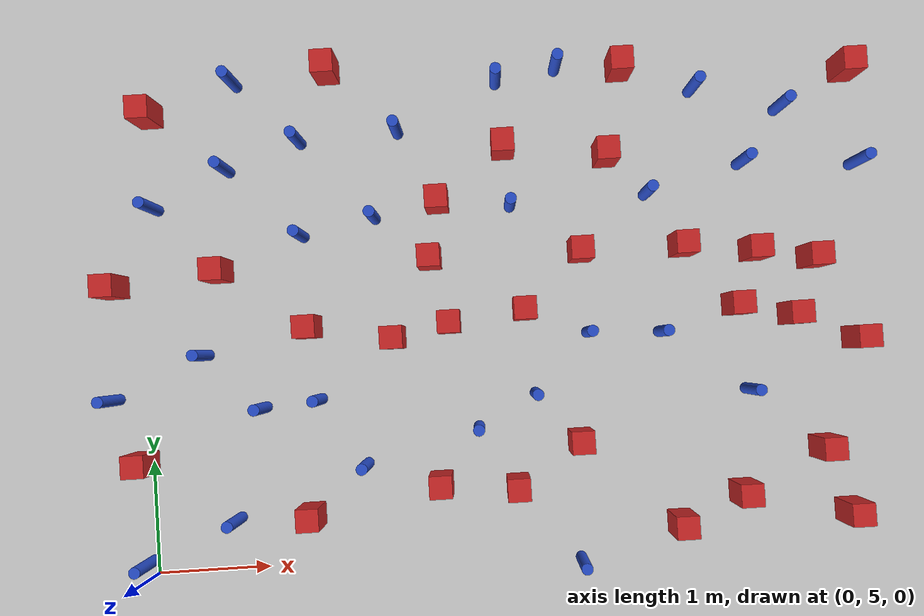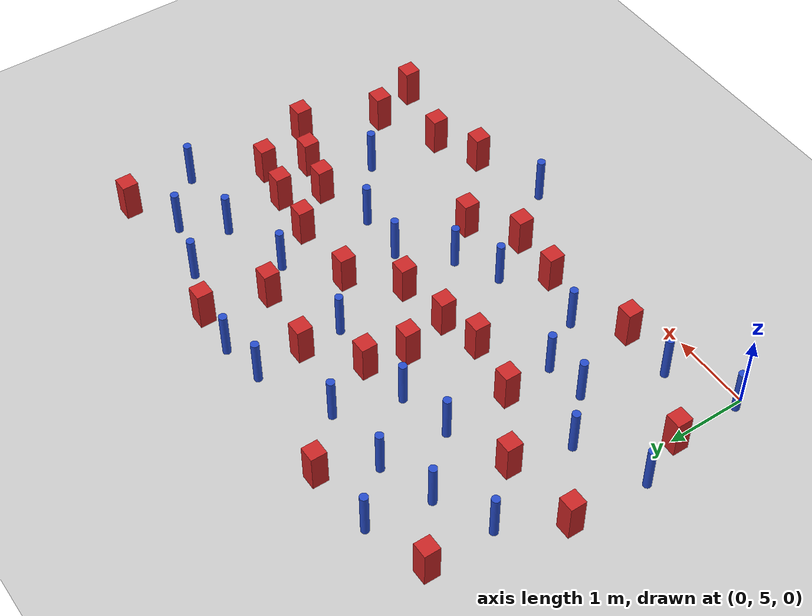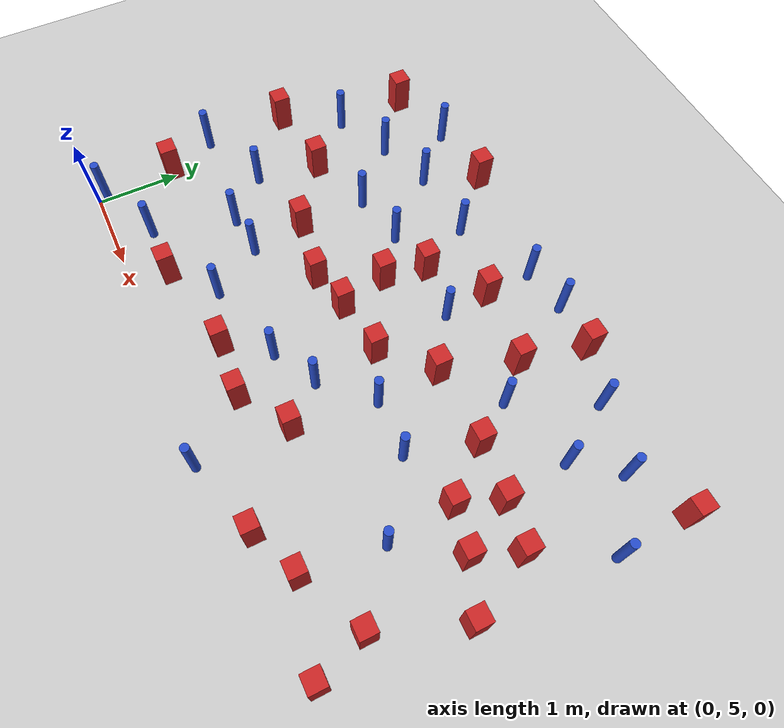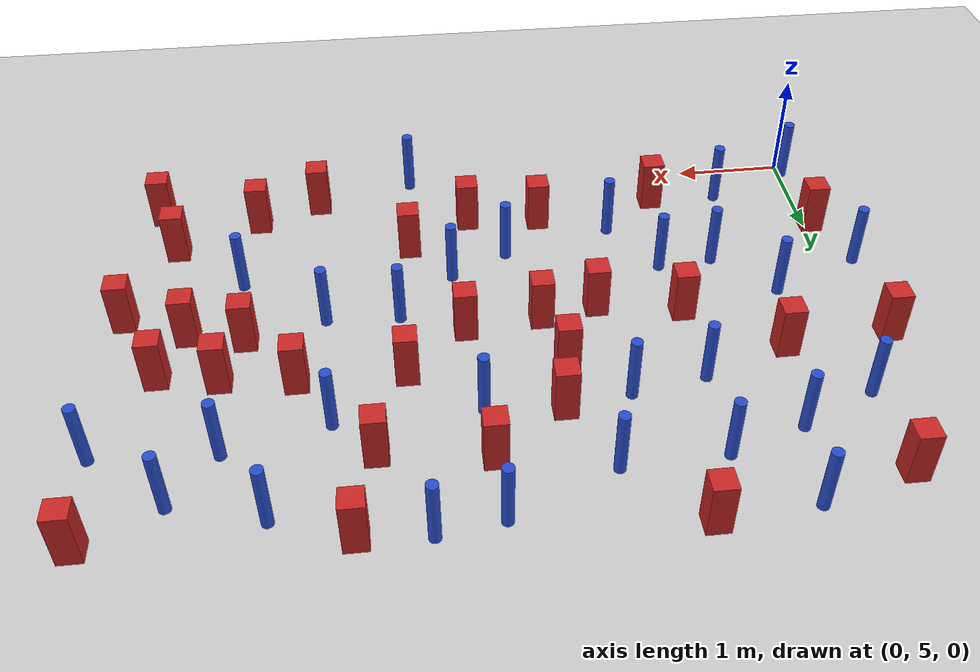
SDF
<sdf version="1.6">
 <world name="default">
  <model name="ground_plane">
   <static>1</static>
   <link name="link">
    <collision name="collision">
     <geometry><plane><normal>0 0 1</normal><size>100 100</size></plane></geometry>
     <surface><friction><ode><mu>100</mu><mu2>50</mu2></ode></friction></surface>
    </collision>
    <visual name="visual">
     <cast_shadows>0</cast_shadows>
     <geometry><plane><normal>0 0 1</normal><size>100 100</size></plane></geometry>
     <material>
      <ambient>1.0 1.0 1.0 1.0</ambient>
      <diffuse>0.8 0.8 0.8 1.0</diffuse>
      <specular>0.01 0.01 0.01 1.000000</specular>
     </material>
    </visual>
   </link>
  </model>
  <model name="square_post_obstacle3">
   <static>true</static>
   <pose>-0.052275715814 5.99567114476 -7.80171244635e-07 7.17449752808e-06 -5.6639232126e-07 2.2715510512e-05</pose>
   <link name="link">
    <pose>0 0 0.25 0 -0 0</pose>
    <inertial>
     <mass>100</mass>
     <inertia>
      <ixx>0.166667</ixx>
      <ixy>0</ixy>
      <ixz>0</ixz>
      <iyy>0.166667</iyy>
      <iyz>0</iyz>
      <izz>0.166667</izz>
     </inertia>
    </inertial>
    <collision name="collision"><geometry><box><size>.2 .2 .5</size></box></geometry></collision>
    <visual name="visual">
     <geometry><box><size>.2 .2 .5</size></box></geometry>
     <material>
      <script><name>Gazebo/Red</name><uri>file://media/materials/scripts/gazebo.material</uri></script>
     </material>
    </visual>
   </link>
  </model>
  <model name="pole_obstacle10">
   <static>true</static>
   <pose>2.35610760975 8.82782065724 -2.66029137497e-07 -5.69430205676e-07 6.84129966501e-07 -8.6834937112e-08</pose>
   <link name="link">
    <pose>0 0 0.3 0 -0 0</pose>
    <inertial>
     <mass>1</mass>
     <inertia><ixx>0.145833</ixx><ixy>0</ixy><ixz>0</ixz><iyy>0.145833</iyy><iyz>0</iyz><izz>0.125</izz></inertia>
    </inertial>
    <collision name="collision">
     <geometry><cylinder><radius>0.05</radius><length>.6</length></cylinder></geometry>
    </collision>
    <visual name="visual">
     <geometry><cylinder><radius>0.05</radius><length>.6</length></cylinder></geometry>
     <material>
      <script><name>Gazebo/Blue</name><uri>file://media/materials/scripts/gazebo.material</uri></script>
     </material>
    </visual>
   </link>
  </model>
  <model name="square_post_obstacle14">
   <static>true</static>
   <pose>6.35585183416 6.74321100614 -7.80171244635e-07 7.17449752808e-06 -5.6639232126e-07 2.2715510512e-05</pose>
   <link name="link">
    <pose>0 0 0.25 0 -0 0</pose>
    <inertial>
     <mass>100</mass>
     <inertia>
      <ixx>0.166667</ixx>
      <ixy>0</ixy>
      <ixz>0</ixz>
      <iyy>0.166667</iyy>
      <iyz>0</iyz>
      <izz>0.166667</izz>
     </inertia>
    </inertial>
    <collision name="collision"><geometry><box><size>.2 .2 .5</size></box></geometry></collision>
    <visual name="visual">
     <geometry><box><size>.2 .2 .5</size></box></geometry>
     <material>
      <script><name>Gazebo/Red</name><uri>file://media/materials/scripts/gazebo.material</uri></script>
     </material>
    </visual>
   </link>
  </model>
  <model name="pole_obstacle19">
   <static>true</static>
   <pose>5.78085711866 8.83822243852 -2.66029137441e-07 -5.69430205631e-07 6.84129966561e-07 -8.68349370782e-08</pose>
   <link name="link">
    <pose>0 0 0.3 0 -0 0</pose>
    <inertial>
     <mass>1</mass>
     <inertia><ixx>0.145833</ixx><ixy>0</ixy><ixz>0</ixz><iyy>0.145833</iyy><iyz>0</iyz><izz>0.125</izz></inertia>
    </inertial>
    <collision name="collision">
     <geometry><cylinder><radius>0.05</radius><length>.6</length></cylinder></geometry>
    </collision>
    <visual name="visual">
     <geometry><cylinder><radius>0.05</radius><length>.6</length></cylinder></geometry>
     <material>
      <script><name>Gazebo/Blue</name><uri>file://media/materials/scripts/gazebo.material</uri></script>
     </material>
    </visual>
   </link>
  </model>
  <model name="pole_obstacle22">
   <static>true</static>
   <pose>1.54089773245 6.47001497379 -2.66029137441e-07 -5.69430205635e-07 6.84129966557e-07 -8.68349370822e-08</pose>
   <link name="link">
    <pose>0 0 0.3 0 -0 0</pose>
    <inertial>
     <mass>1</mass>
     <inertia><ixx>0.145833</ixx><ixy>0</ixy><ixz>0</ixz><iyy>0.145833</iyy><iyz>0</iyz><izz>0.125</izz></inertia>
    </inertial>
    <collision name="collision">
     <geometry><cylinder><radius>0.05</radius><length>.6</length></cylinder></geometry>
    </collision>
    <visual name="visual">
     <geometry><cylinder><radius>0.05</radius><length>.6</length></cylinder></geometry>
     <material>
      <script><name>Gazebo/Blue</name><uri>file://media/materials/scripts/gazebo.material</uri></script>
     </material>
    </visual>
   </link>
  </model>
  <model name="pole_obstacle26">
   <static>true</static>
   <pose>2.94157111526 6.14067934251 -2.66029137441e-07 -5.69430205635e-07 6.84129966557e-07 -8.68349370832e-08</pose>
   <link name="link">
    <pose>0 0 0.3 0 -0 0</pose>
    <inertial>
     <mass>1</mass>
     <inertia><ixx>0.145833</ixx><ixy>0</ixy><ixz>0</ixz><iyy>0.145833</iyy><iyz>0</iyz><izz>0.125</izz></inertia>
    </inertial>
    <collision name="collision">
     <geometry><cylinder><radius>0.05</radius><length>.6</length></cylinder></geometry>
    </collision>
    <visual name="visual">
     <geometry><cylinder><radius>0.05</radius><length>.6</length></cylinder></geometry>
     <material>
      <script><name>Gazebo/Blue</name><uri>file://media/materials/scripts/gazebo.material</uri></script>
     </material>
    </visual>
   </link>
  </model>
  <model name="square_post_obstacle20">
   <static>true</static>
   <pose>2.22620706978 6.97850920436 -7.80171244635e-07 7.17449752808e-06 -5.6639232126e-07 2.2715510512e-05</pose>
   <link name="link">
    <pose>0 0 0.25 0 -0 0</pose>
    <inertial>
     <mass>100</mass>
     <inertia>
      <ixx>0.166667</ixx>
      <ixy>0</ixy>
      <ixz>0</ixz>
      <iyy>0.166667</iyy>
      <iyz>0</iyz>
      <izz>0.166667</izz>
     </inertia>
    </inertial>
    <collision name="collision"><geometry><box><size>.2 .2 .5</size></box></geometry></collision>
    <visual name="visual">
     <geometry><box><size>.2 .2 .5</size></box></geometry>
     <material>
      <script><name>Gazebo/Red</name><uri>file://media/materials/scripts/gazebo.material</uri></script>
     </material>
    </visual>
   </link>
  </model>
  <model name="square_post_obstacle30">
   <static>true</static>
   <pose>3.9288812483 7.65785033629 -7.80171244635e-07 7.17449752808e-06 -5.6639232126e-07 2.2715510512e-05</pose>
   <link name="link">
    <pose>0 0 0.25 0 -0 0</pose>
    <inertial>
     <mass>100</mass>
     <inertia>
      <ixx>0.166667</ixx>
      <ixy>0</ixy>
      <ixz>0</ixz>
      <iyy>0.166667</iyy>
      <iyz>0</iyz>
      <izz>0.166667</izz>
     </inertia>
    </inertial>
    <collision name="collision"><geometry><box><size>.2 .2 .5</size></box></geometry></collision>
    <visual name="visual">
     <geometry><box><size>.2 .2 .5</size></box></geometry>
     <material>
      <script><name>Gazebo/Red</name><uri>file://media/materials/scripts/gazebo.material</uri></script>
     </material>
    </visual>
   </link>
  </model>
  <model name="square_post_obstacle41">
   <static>true</static>
   <pose>3.83089418273 5.97310465124 -7.80171244635e-07 7.17449752808e-06 -5.6639232126e-07 2.2715510512e-05</pose>
   <link name="link">
    <pose>0 0 0.25 0 -0 0</pose>
    <inertial>
     <mass>100</mass>
     <inertia>
      <ixx>0.166667</ixx>
      <ixy>0</ixy>
      <ixz>0</ixz>
      <iyy>0.166667</iyy>
      <iyz>0</iyz>
      <izz>0.166667</izz>
     </inertia>
    </inertial>
    <collision name="collision"><geometry><box><size>.2 .2 .5</size></box></geometry></collision>
    <visual name="visual">
     <geometry><box><size>.2 .2 .5</size></box></geometry>
     <material>
      <script><name>Gazebo/Red</name><uri>file://media/materials/scripts/gazebo.material</uri></script>
     </material>
    </visual>
   </link>
  </model>
  <model name="pole_obstacle62">
   <static>true</static>
   <pose>0.540616014914 6.92256823517 -2.66029137441e-07 -5.69430205632e-07 6.8412996656e-07 -8.68349370785e-08</pose>
   <link name="link">
    <pose>0 0 0.3 0 -0 0</pose>
    <inertial>
     <mass>1</mass>
     <inertia><ixx>0.145833</ixx><ixy>0</ixy><ixz>0</ixz><iyy>0.145833</iyy><iyz>0</iyz><izz>0.125</izz></inertia>
    </inertial>
    <collision name="collision">
     <geometry><cylinder><radius>0.05</radius><length>.6</length></cylinder></geometry>
    </collision>
    <visual name="visual">
     <geometry><cylinder><radius>0.05</radius><length>.6</length></cylinder></geometry>
     <material>
      <script><name>Gazebo/Blue</name><uri>file://media/materials/scripts/gazebo.material</uri></script>
     </material>
    </visual>
   </link>
  </model>
  <model name="pole_obstacle66">
   <static>true</static>
   <pose>5.41354368745 8.36356187564 -2.66029137441e-07 -5.69430205631e-07 6.84129966561e-07 -8.68349370782e-08</pose>
   <link name="link">
    <pose>0 0 0.3 0 -0 0</pose>
    <inertial>
     <mass>1</mass>
     <inertia><ixx>0.145833</ixx><ixy>0</ixy><ixz>0</ixz><iyy>0.145833</iyy><iyz>0</iyz><izz>0.125</izz></inertia>
    </inertial>
    <collision name="collision">
     <geometry><cylinder><radius>0.05</radius><length>.6</length></cylinder></geometry>
    </collision>
    <visual name="visual">
     <geometry><cylinder><radius>0.05</radius><length>.6</length></cylinder></geometry>
     <material>
      <script><name>Gazebo/Blue</name><uri>file://media/materials/scripts/gazebo.material</uri></script>
     </material>
    </visual>
   </link>
  </model>
  <model name="square_post_obstacle56">
   <static>true</static>
   <pose>3.40209601687 7.16593154518 -7.80171244635e-07 7.17449752808e-06 -5.6639232126e-07 2.2715510512e-05</pose>
   <link name="link">
    <pose>0 0 0.25 0 -0 0</pose>
    <inertial>
     <mass>100</mass>
     <inertia>
      <ixx>0.166667</ixx>
      <ixy>0</ixy>
      <ixz>0</ixz>
      <iyy>0.166667</iyy>
      <iyz>0</iyz>
      <izz>0.166667</izz>
     </inertia>
    </inertial>
    <collision name="collision"><geometry><box><size>.2 .2 .5</size></box></geometry></collision>
    <visual name="visual">
     <geometry><box><size>.2 .2 .5</size></box></geometry>
     <material>
      <script><name>Gazebo/Red</name><uri>file://media/materials/scripts/gazebo.material</uri></script>
     </material>
    </visual>
   </link>
  </model>
  <model name="pole_obstacle70">
   <static>true</static>
   <pose>-0.0394150920426 5.11509603795 -2.66029137441e-07 -5.69430205631e-07 6.84129966562e-07 -8.68349370804e-08</pose>
   <link name="link">
    <pose>0 0 0.3 0 -0 0</pose>
    <inertial>
     <mass>1</mass>
     <inertia><ixx>0.145833</ixx><ixy>0</ixy><ixz>0</ixz><iyy>0.145833</iyy><iyz>0</iyz><izz>0.125</izz></inertia>
    </inertial>
    <collision name="collision">
     <geometry><cylinder><radius>0.05</radius><length>.6</length></cylinder></geometry>
    </collision>
    <visual name="visual">
     <geometry><cylinder><radius>0.05</radius><length>.6</length></cylinder></geometry>
     <material>
      <script><name>Gazebo/Blue</name><uri>file://media/materials/scripts/gazebo.material</uri></script>
     </material>
    </visual>
   </link>
  </model>
  <model name="pole_obstacle71">
   <static>true</static>
   <pose>2.10954711414 8.06397014819 -2.66029137497e-07 -5.69430205676e-07 6.84129966501e-07 -8.6834937112e-08</pose>
   <link name="link">
    <pose>0 0 0.3 0 -0 0</pose>
    <inertial>
     <mass>1</mass>
     <inertia><ixx>0.145833</ixx><ixy>0</ixy><ixz>0</ixz><iyy>0.145833</iyy><iyz>0</iyz><izz>0.125</izz></inertia>
    </inertial>
    <collision name="collision">
     <geometry><cylinder><radius>0.05</radius><length>.6</length></cylinder></geometry>
    </collision>
    <visual name="visual">
     <geometry><cylinder><radius>0.05</radius><length>.6</length></cylinder></geometry>
     <material>
      <script><name>Gazebo/Blue</name><uri>file://media/materials/scripts/gazebo.material</uri></script>
     </material>
    </visual>
   </link>
  </model>
  <model name="square_post_obstacle64">
   <static>true</static>
   <pose>5.29170259975 7.1006278311 -7.80171244635e-07 7.17449752808e-06 -5.6639232126e-07 2.2715510512e-05</pose>
   <link name="link">
    <pose>0 0 0.25 0 -0 0</pose>
    <inertial>
     <mass>100</mass>
     <inertia>
      <ixx>0.166667</ixx>
      <ixy>0</ixy>
      <ixz>0</ixz>
      <iyy>0.166667</iyy>
      <iyz>0</iyz>
      <izz>0.166667</izz>
     </inertia>
    </inertial>
    <collision name="collision"><geometry><box><size>.2 .2 .5</size></box></geometry></collision>
    <visual name="visual">
     <geometry><box><size>.2 .2 .5</size></box></geometry>
     <material>
      <script><name>Gazebo/Red</name><uri>file://media/materials/scripts/gazebo.material</uri></script>
     </material>
    </visual>
   </link>
  </model>
  <model name="pole_obstacle78">
   <static>true</static>
   <pose>0.812121043673 8.56617984951 -2.66029137441e-07 -5.69430205653e-07 6.84129966536e-07 -8.6834937098e-08</pose>
   <link name="link">
    <pose>0 0 0.3 0 -0 0</pose>
    <inertial>
     <mass>1</mass>
     <inertia><ixx>0.145833</ixx><ixy>0</ixy><ixz>0</ixz><iyy>0.145833</iyy><iyz>0</iyz><izz>0.125</izz></inertia>
    </inertial>
    <collision name="collision">
     <geometry><cylinder><radius>0.05</radius><length>.6</length></cylinder></geometry>
    </collision>
    <visual name="visual">
     <geometry><cylinder><radius>0.05</radius><length>.6</length></cylinder></geometry>
     <material>
      <script><name>Gazebo/Blue</name><uri>file://media/materials/scripts/gazebo.material</uri></script>
     </material>
    </visual>
   </link>
  </model>
  <model name="pole_obstacle80">
   <static>true</static>
   <pose>1.47290143079 8.78660141103 -2.66029137441e-07 -5.69430205648e-07 6.84129966543e-07 -8.68349370925e-08</pose>
   <link name="link">
    <pose>0 0 0.3 0 -0 0</pose>
    <inertial>
     <mass>1</mass>
     <inertia><ixx>0.145833</ixx><ixy>0</ixy><ixz>0</ixz><iyy>0.145833</iyy><iyz>0</iyz><izz>0.125</izz></inertia>
    </inertial>
    <collision name="collision">
     <geometry><cylinder><radius>0.05</radius><length>.6</length></cylinder></geometry>
    </collision>
    <visual name="visual">
     <geometry><cylinder><radius>0.05</radius><length>.6</length></cylinder></geometry>
     <material>
      <script><name>Gazebo/Blue</name><uri>file://media/materials/scripts/gazebo.material</uri></script>
     </material>
    </visual>
   </link>
  </model>
  <model name="square_post_obstacle71">
   <static>true</static>
   <pose>4.37285888145 9.28550929381 -7.80171244635e-07 7.17449752808e-06 -5.6639232126e-07 2.2715510512e-05</pose>
   <link name="link">
    <pose>0 0 0.25 0 -0 0</pose>
    <inertial>
     <mass>100</mass>
     <inertia>
      <ixx>0.166667</ixx>
      <ixy>0</ixy>
      <ixz>0</ixz>
      <iyy>0.166667</iyy>
      <iyz>0</iyz>
      <izz>0.166667</izz>
     </inertia>
    </inertial>
    <collision name="collision"><geometry><box><size>.2 .2 .5</size></box></geometry></collision>
    <visual name="visual">
     <geometry><box><size>.2 .2 .5</size></box></geometry>
     <material>
      <script><name>Gazebo/Red</name><uri>file://media/materials/scripts/gazebo.material</uri></script>
     </material>
    </visual>
   </link>
  </model>
  <model name="pole_obstacle85">
   <static>true</static>
   <pose>3.26496765232 9.22802641486 -2.66029137497e-07 -5.69430205676e-07 6.84129966501e-07 -8.6834937112e-08</pose>
   <link name="link">
    <pose>0 0 0.3 0 -0 0</pose>
    <inertial>
     <mass>1</mass>
     <inertia><ixx>0.145833</ixx><ixy>0</ixy><ixz>0</ixz><iyy>0.145833</iyy><iyz>0</iyz><izz>0.125</izz></inertia>
    </inertial>
    <collision name="collision">
     <geometry><cylinder><radius>0.05</radius><length>.6</length></cylinder></geometry>
    </collision>
    <visual name="visual">
     <geometry><cylinder><radius>0.05</radius><length>.6</length></cylinder></geometry>
     <material>
      <script><name>Gazebo/Blue</name><uri>file://media/materials/scripts/gazebo.material</uri></script>
     </material>
    </visual>
   </link>
  </model>
  <model name="square_post_obstacle73">
   <static>true</static>
   <pose>1.42253095902 5.45103225307 -7.80171244635e-07 7.17449752808e-06 -5.6639232126e-07 2.2715510512e-05</pose>
   <link name="link">
    <pose>0 0 0.25 0 -0 0</pose>
    <inertial>
     <mass>100</mass>
     <inertia>
      <ixx>0.166667</ixx>
      <ixy>0</ixy>
      <ixz>0</ixz>
      <iyy>0.166667</iyy>
      <iyz>0</iyz>
      <izz>0.166667</izz>
     </inertia>
    </inertial>
    <collision name="collision"><geometry><box><size>.2 .2 .5</size></box></geometry></collision>
    <visual name="visual">
     <geometry><box><size>.2 .2 .5</size></box></geometry>
     <material>
      <script><name>Gazebo/Red</name><uri>file://media/materials/scripts/gazebo.material</uri></script>
     </material>
    </visual>
   </link>
  </model>
  <model name="pole_obstacle87">
   <static>true</static>
   <pose>3.95947070285 6.92773630327 -2.66029137441e-07 -5.69430205645e-07 6.84129966546e-07 -8.68349370914e-08</pose>
   <link name="link">
    <pose>0 0 0.3 0 -0 0</pose>
    <inertial>
     <mass>1</mass>
     <inertia><ixx>0.145833</ixx><ixy>0</ixy><ixz>0</ixz><iyy>0.145833</iyy><iyz>0</iyz><izz>0.125</izz></inertia>
    </inertial>
    <collision name="collision">
     <geometry><cylinder><radius>0.05</radius><length>.6</length></cylinder></geometry>
    </collision>
    <visual name="visual">
     <geometry><cylinder><radius>0.05</radius><length>.6</length></cylinder></geometry>
     <material>
      <script><name>Gazebo/Blue</name><uri>file://media/materials/scripts/gazebo.material</uri></script>
     </material>
    </visual>
   </link>
  </model>
  <model name="square_post_obstacle76">
   <static>true</static>
   <pose>0.700652838957 7.66441642468 -7.80171244635e-07 7.17449752808e-06 -5.6639232126e-07 2.2715510512e-05</pose>
   <link name="link">
    <pose>0 0 0.25 0 -0 0</pose>
    <inertial>
     <mass>100</mass>
     <inertia>
      <ixx>0.166667</ixx>
      <ixy>0</ixy>
      <ixz>0</ixz>
      <iyy>0.166667</iyy>
      <iyz>0</iyz>
      <izz>0.166667</izz>
     </inertia>
    </inertial>
    <collision name="collision"><geometry><box><size>.2 .2 .5</size></box></geometry></collision>
    <visual name="visual">
     <geometry><box><size>.2 .2 .5</size></box></geometry>
     <material>
      <script><name>Gazebo/Red</name><uri>file://media/materials/scripts/gazebo.material</uri></script>
     </material>
    </visual>
   </link>
  </model>
  <model name="square_post_obstacle77">
   <static>true</static>
   <pose>6.39340867287 9.16328746419 -7.80171244635e-07 7.17449752808e-06 -5.6639232126e-07 2.2715510512e-05</pose>
   <link name="link">
    <pose>0 0 0.25 0 -0 0</pose>
    <inertial>
     <mass>100</mass>
     <inertia>
      <ixx>0.166667</ixx>
      <ixy>0</ixy>
      <ixz>0</ixz>
      <iyy>0.166667</iyy>
      <iyz>0</iyz>
      <izz>0.166667</izz>
     </inertia>
    </inertial>
    <collision name="collision"><geometry><box><size>.2 .2 .5</size></box></geometry></collision>
    <visual name="visual">
     <geometry><box><size>.2 .2 .5</size></box></geometry>
     <material>
      <script><name>Gazebo/Red</name><uri>file://media/materials/scripts/gazebo.material</uri></script>
     </material>
    </visual>
   </link>
  </model>
  <model name="square_post_obstacle80">
   <static>true</static>
   <pose>4.68021945516 5.19533221352 -7.80171244635e-07 7.17449752808e-06 -5.6639232126e-07 2.2715510512e-05</pose>
   <link name="link">
    <pose>0 0 0.25 0 -0 0</pose>
    <inertial>
     <mass>100</mass>
     <inertia>
      <ixx>0.166667</ixx>
      <ixy>0</ixy>
      <ixz>0</ixz>
      <iyy>0.166667</iyy>
      <iyz>0</iyz>
      <izz>0.166667</izz>
     </inertia>
    </inertial>
    <collision name="collision"><geometry><box><size>.2 .2 .5</size></box></geometry></collision>
    <visual name="visual">
     <geometry><box><size>.2 .2 .5</size></box></geometry>
     <material>
      <script><name>Gazebo/Red</name><uri>file://media/materials/scripts/gazebo.material</uri></script>
     </material>
    </visual>
   </link>
  </model>
  <model name="square_post_obstacle81">
   <static>true</static>
   <pose>-0.249215403862 7.57418927846 -7.80171244635e-07 7.17449752808e-06 -5.6639232126e-07 2.2715510512e-05</pose>
   <link name="link">
    <pose>0 0 0.25 0 -0 0</pose>
    <inertial>
     <mass>100</mass>
     <inertia>
      <ixx>0.166667</ixx>
      <ixy>0</ixy>
      <ixz>0</ixz>
      <iyy>0.166667</iyy>
      <iyz>0</iyz>
      <izz>0.166667</izz>
     </inertia>
    </inertial>
    <collision name="collision"><geometry><box><size>.2 .2 .5</size></box></geometry></collision>
    <visual name="visual">
     <geometry><box><size>.2 .2 .5</size></box></geometry>
     <material>
      <script><name>Gazebo/Red</name><uri>file://media/materials/scripts/gazebo.material</uri></script>
     </material>
    </visual>
   </link>
  </model>
  <model name="pole_obstacle97">
   <static>true</static>
   <pose>3.78564591583 4.91891246787 -2.66029137441e-07 -5.69430205635e-07 6.84129966557e-07 -8.68349370832e-08</pose>
   <link name="link">
    <pose>0 0 0.3 0 -0 0</pose>
    <inertial>
     <mass>1</mass>
     <inertia><ixx>0.145833</ixx><ixy>0</ixy><ixz>0</ixz><iyy>0.145833</iyy><iyz>0</iyz><izz>0.125</izz></inertia>
    </inertial>
    <collision name="collision">
     <geometry><cylinder><radius>0.05</radius><length>.6</length></cylinder></geometry>
    </collision>
    <visual name="visual">
     <geometry><cylinder><radius>0.05</radius><length>.6</length></cylinder></geometry>
     <material>
      <script><name>Gazebo/Blue</name><uri>file://media/materials/scripts/gazebo.material</uri></script>
     </material>
    </visual>
   </link>
  </model>
  <model name="pole_obstacle100">
   <static>true</static>
   <pose>0.917465412498 9.34221974622 -2.66029137441e-07 -5.69430205653e-07 6.84129966536e-07 -8.6834937098e-08</pose>
   <link name="link">
    <pose>0 0 0.3 0 -0 0</pose>
    <inertial>
     <mass>1</mass>
     <inertia><ixx>0.145833</ixx><ixy>0</ixy><ixz>0</ixz><iyy>0.145833</iyy><iyz>0</iyz><izz>0.125</izz></inertia>
    </inertial>
    <collision name="collision">
     <geometry><cylinder><radius>0.05</radius><length>.6</length></cylinder></geometry>
    </collision>
    <visual name="visual">
     <geometry><cylinder><radius>0.05</radius><length>.6</length></cylinder></geometry>
     <material>
      <script><name>Gazebo/Blue</name><uri>file://media/materials/scripts/gazebo.material</uri></script>
     </material>
    </visual>
   </link>
  </model>
  <model name="pole_obstacle101">
   <static>true</static>
   <pose>3.8055453714 9.31790699952 -2.66029137497e-07 -5.69430205676e-07 6.84129966501e-07 -8.6834937112e-08</pose>
   <link name="link">
    <pose>0 0 0.3 0 -0 0</pose>
    <inertial>
     <mass>1</mass>
     <inertia><ixx>0.145833</ixx><ixy>0</ixy><ixz>0</ixz><iyy>0.145833</iyy><iyz>0</iyz><izz>0.125</izz></inertia>
    </inertial>
    <collision name="collision">
     <geometry><cylinder><radius>0.05</radius><length>.6</length></cylinder></geometry>
    </collision>
    <visual name="visual">
     <geometry><cylinder><radius>0.05</radius><length>.6</length></cylinder></geometry>
     <material>
      <script><name>Gazebo/Blue</name><uri>file://media/materials/scripts/gazebo.material</uri></script>
     </material>
    </visual>
   </link>
  </model>
  <model name="square_post_obstacle97">
   <static>true</static>
   <pose>3.29262240636 8.63357182345 -7.80171244635e-07 7.17449752808e-06 -5.6639232126e-07 2.2715510512e-05</pose>
   <link name="link">
    <pose>0 0 0.25 0 -0 0</pose>
    <inertial>
     <mass>100</mass>
     <inertia>
      <ixx>0.166667</ixx>
      <ixy>0</ixy>
      <ixz>0</ixz>
      <iyy>0.166667</iyy>
      <iyz>0</iyz>
      <izz>0.166667</izz>
     </inertia>
    </inertial>
    <collision name="collision"><geometry><box><size>.2 .2 .5</size></box></geometry></collision>
    <visual name="visual">
     <geometry><box><size>.2 .2 .5</size></box></geometry>
     <material>
      <script><name>Gazebo/Red</name><uri>file://media/materials/scripts/gazebo.material</uri></script>
     </material>
    </visual>
   </link>
  </model>
  <model name="square_post_obstacle102">
   <static>true</static>
   <pose>6.19023293732 5.21513610214 -7.80171244635e-07 7.17449752808e-06 -5.6639232126e-07 2.2715510512e-05</pose>
   <link name="link">
    <pose>0 0 0.25 0 -0 0</pose>
    <inertial>
     <mass>100</mass>
     <inertia>
      <ixx>0.166667</ixx>
      <ixy>0</ixy>
      <ixz>0</ixz>
      <iyy>0.166667</iyy>
      <iyz>0</iyz>
      <izz>0.166667</izz>
     </inertia>
    </inertial>
    <collision name="collision"><geometry><box><size>.2 .2 .5</size></box></geometry></collision>
    <visual name="visual">
     <geometry><box><size>.2 .2 .5</size></box></geometry>
     <material>
      <script><name>Gazebo/Red</name><uri>file://media/materials/scripts/gazebo.material</uri></script>
     </material>
    </visual>
   </link>
  </model>
  <model name="pole_obstacle111">
   <static>true</static>
   <pose>1.9273725619 5.87032819442 -2.66029137441e-07 -5.69430205635e-07 6.84129966557e-07 -8.68349370822e-08</pose>
   <link name="link">
    <pose>0 0 0.3 0 -0 0</pose>
    <inertial>
     <mass>1</mass>
     <inertia><ixx>0.145833</ixx><ixy>0</ixy><ixz>0</ixz><iyy>0.145833</iyy><iyz>0</iyz><izz>0.125</izz></inertia>
    </inertial>
    <collision name="collision">
     <geometry><cylinder><radius>0.05</radius><length>.6</length></cylinder></geometry>
    </collision>
    <visual name="visual">
     <geometry><cylinder><radius>0.05</radius><length>.6</length></cylinder></geometry>
     <material>
      <script><name>Gazebo/Blue</name><uri>file://media/materials/scripts/gazebo.material</uri></script>
     </material>
    </visual>
   </link>
  </model>
  <model name="square_post_obstacle106">
   <static>true</static>
   <pose>2.58153584131 5.66519714033 -7.80171244635e-07 7.17449752808e-06 -5.6639232126e-07 2.2715510512e-05</pose>
   <link name="link">
    <pose>0 0 0.25 0 -0 0</pose>
    <inertial>
     <mass>100</mass>
     <inertia>
      <ixx>0.166667</ixx>
      <ixy>0</ixy>
      <ixz>0</ixz>
      <iyy>0.166667</iyy>
      <iyz>0</iyz>
      <izz>0.166667</izz>
     </inertia>
    </inertial>
    <collision name="collision"><geometry><box><size>.2 .2 .5</size></box></geometry></collision>
    <visual name="visual">
     <geometry><box><size>.2 .2 .5</size></box></geometry>
     <material>
      <script><name>Gazebo/Red</name><uri>file://media/materials/scripts/gazebo.material</uri></script>
     </material>
    </visual>
   </link>
  </model>
  <model name="pole_obstacle124">
   <static>true</static>
   <pose>5.01665966452 9.05122714878 -2.66029137441e-07 -5.69430205631e-07 6.84129966561e-07 -8.68349370782e-08</pose>
   <link name="link">
    <pose>0 0 0.3 0 -0 0</pose>
    <inertial>
     <mass>1</mass>
     <inertia><ixx>0.145833</ixx><ixy>0</ixy><ixz>0</ixz><iyy>0.145833</iyy><iyz>0</iyz><izz>0.125</izz></inertia>
    </inertial>
    <collision name="collision">
     <geometry><cylinder><radius>0.05</radius><length>.6</length></cylinder></geometry>
    </collision>
    <visual name="visual">
     <geometry><cylinder><radius>0.05</radius><length>.6</length></cylinder></geometry>
     <material>
      <script><name>Gazebo/Blue</name><uri>file://media/materials/scripts/gazebo.material</uri></script>
     </material>
    </visual>
   </link>
  </model>
  <model name="square_post_obstacle123">
   <static>true</static>
   <pose>5.24874029614 5.43601396622 -7.80171244635e-07 7.17449752808e-06 -5.6639232126e-07 2.2715510512e-05</pose>
   <link name="link">
    <pose>0 0 0.25 0 -0 0</pose>
    <inertial>
     <mass>100</mass>
     <inertia>
      <ixx>0.166667</ixx>
      <ixy>0</ixy>
      <ixz>0</ixz>
      <iyy>0.166667</iyy>
      <iyz>0</iyz>
      <izz>0.166667</izz>
     </inertia>
    </inertial>
    <collision name="collision"><geometry><box><size>.2 .2 .5</size></box></geometry></collision>
    <visual name="visual">
     <geometry><box><size>.2 .2 .5</size></box></geometry>
     <material>
      <script><name>Gazebo/Red</name><uri>file://media/materials/scripts/gazebo.material</uri></script>
     </material>
    </visual>
   </link>
  </model>
  <model name="square_post_obstacle125">
   <static>true</static>
   <pose>5.99561542079 7.48379957683 -7.80171244635e-07 7.17449752808e-06 -5.6639232126e-07 2.2715510512e-05</pose>
   <link name="link">
    <pose>0 0 0.25 0 -0 0</pose>
    <inertial>
     <mass>100</mass>
     <inertia>
      <ixx>0.166667</ixx>
      <ixy>0</ixy>
      <ixz>0</ixz>
      <iyy>0.166667</iyy>
      <iyz>0</iyz>
      <izz>0.166667</izz>
     </inertia>
    </inertial>
    <collision name="collision"><geometry><box><size>.2 .2 .5</size></box></geometry></collision>
    <visual name="visual">
     <geometry><box><size>.2 .2 .5</size></box></geometry>
     <material>
      <script><name>Gazebo/Red</name><uri>file://media/materials/scripts/gazebo.material</uri></script>
     </material>
    </visual>
   </link>
  </model>
  <model name="pole_obstacle143">
   <static>true</static>
   <pose>1.03877015246 6.4253703736 -2.66029137441e-07 -5.69430205636e-07 6.84129966556e-07 -8.68349370832e-08</pose>
   <link name="link">
    <pose>0 0 0.3 0 -0 0</pose>
    <inertial>
     <mass>1</mass>
     <inertia><ixx>0.145833</ixx><ixy>0</ixy><ixz>0</ixz><iyy>0.145833</iyy><iyz>0</iyz><izz>0.125</izz></inertia>
    </inertial>
    <collision name="collision">
     <geometry><cylinder><radius>0.05</radius><length>.6</length></cylinder></geometry>
    </collision>
    <visual name="visual">
     <geometry><cylinder><radius>0.05</radius><length>.6</length></cylinder></geometry>
     <material>
      <script><name>Gazebo/Blue</name><uri>file://media/materials/scripts/gazebo.material</uri></script>
     </material>
    </visual>
   </link>
  </model>
  <model name="pole_obstacle145">
   <static>true</static>
   <pose>-0.284047552046 6.57028696519 -2.66029137441e-07 -5.69430205631e-07 6.84129966562e-07 -8.68349370775e-08</pose>
   <link name="link">
    <pose>0 0 0.3 0 -0 0</pose>
    <inertial>
     <mass>1</mass>
     <inertia><ixx>0.145833</ixx><ixy>0</ixy><ixz>0</ixz><iyy>0.145833</iyy><iyz>0</iyz><izz>0.125</izz></inertia>
    </inertial>
    <collision name="collision">
     <geometry><cylinder><radius>0.05</radius><length>.6</length></cylinder></geometry>
    </collision>
    <visual name="visual">
     <geometry><cylinder><radius>0.05</radius><length>.6</length></cylinder></geometry>
     <material>
      <script><name>Gazebo/Blue</name><uri>file://media/materials/scripts/gazebo.material</uri></script>
     </material>
    </visual>
   </link>
  </model>
  <model name="pole_obstacle161">
   <static>true</static>
   <pose>3.32948770461 8.10181165335 -2.66029137497e-07 -5.69430205676e-07 6.84129966501e-07 -8.6834937112e-08</pose>
   <link name="link">
    <pose>0 0 0.3 0 -0 0</pose>
    <inertial>
     <mass>1</mass>
     <inertia><ixx>0.145833</ixx><ixy>0</ixy><ixz>0</ixz><iyy>0.145833</iyy><iyz>0</iyz><izz>0.125</izz></inertia>
    </inertial>
    <collision name="collision">
     <geometry><cylinder><radius>0.05</radius><length>.6</length></cylinder></geometry>
    </collision>
    <visual name="visual">
     <geometry><cylinder><radius>0.05</radius><length>.6</length></cylinder></geometry>
     <material>
      <script><name>Gazebo/Blue</name><uri>file://media/materials/scripts/gazebo.material</uri></script>
     </material>
    </visual>
   </link>
  </model>
  <model name="square_post_obstacle167">
   <static>true</static>
   <pose>5.47675502411 7.57956687106 -7.80171244635e-07 7.17449752808e-06 -5.6639232126e-07 2.2715510512e-05</pose>
   <link name="link">
    <pose>0 0 0.25 0 -0 0</pose>
    <inertial>
     <mass>100</mass>
     <inertia>
      <ixx>0.166667</ixx>
      <ixy>0</ixy>
      <ixz>0</ixz>
      <iyy>0.166667</iyy>
      <iyz>0</iyz>
      <izz>0.166667</izz>
     </inertia>
    </inertial>
    <collision name="collision"><geometry><box><size>.2 .2 .5</size></box></geometry></collision>
    <visual name="visual">
     <geometry><box><size>.2 .2 .5</size></box></geometry>
     <material>
      <script><name>Gazebo/Red</name><uri>file://media/materials/scripts/gazebo.material</uri></script>
     </material>
    </visual>
   </link>
  </model>
  <model name="square_post_obstacle173">
   <static>true</static>
   <pose>1.47560541745 7.11696496764 -7.80171244635e-07 7.17449752808e-06 -5.6639232126e-07 2.2715510512e-05</pose>
   <link name="link">
    <pose>0 0 0.25 0 -0 0</pose>
    <inertial>
     <mass>100</mass>
     <inertia>
      <ixx>0.166667</ixx>
      <ixy>0</ixy>
      <ixz>0</ixz>
      <iyy>0.166667</iyy>
      <iyz>0</iyz>
      <izz>0.166667</izz>
     </inertia>
    </inertial>
    <collision name="collision"><geometry><box><size>.2 .2 .5</size></box></geometry></collision>
    <visual name="visual">
     <geometry><box><size>.2 .2 .5</size></box></geometry>
     <material>
      <script><name>Gazebo/Red</name><uri>file://media/materials/scripts/gazebo.material</uri></script>
     </material>
    </visual>
   </link>
  </model>
  <model name="pole_obstacle176">
   <static>true</static>
   <pose>4.55152572774 8.13684193728 -2.66029137441e-07 -5.69430205631e-07 6.84129966561e-07 -8.68349370782e-08</pose>
   <link name="link">
    <pose>0 0 0.3 0 -0 0</pose>
    <inertial>
     <mass>1</mass>
     <inertia><ixx>0.145833</ixx><ixy>0</ixy><ixz>0</ixz><iyy>0.145833</iyy><iyz>0</iyz><izz>0.125</izz></inertia>
    </inertial>
    <collision name="collision">
     <geometry><cylinder><radius>0.05</radius><length>.6</length></cylinder></geometry>
    </collision>
    <visual name="visual">
     <geometry><cylinder><radius>0.05</radius><length>.6</length></cylinder></geometry>
     <material>
      <script><name>Gazebo/Blue</name><uri>file://media/materials/scripts/gazebo.material</uri></script>
     </material>
    </visual>
   </link>
  </model>
  <model name="pole_obstacle179">
   <static>true</static>
   <pose>0.14767925892 8.25765014984 -2.66029137441e-07 -5.69430205658e-07 6.84129966531e-07 -8.68349371023e-08</pose>
   <link name="link">
    <pose>0 0 0.3 0 -0 0</pose>
    <inertial>
     <mass>1</mass>
     <inertia><ixx>0.145833</ixx><ixy>0</ixy><ixz>0</ixz><iyy>0.145833</iyy><iyz>0</iyz><izz>0.125</izz></inertia>
    </inertial>
    <collision name="collision">
     <geometry><cylinder><radius>0.05</radius><length>.6</length></cylinder></geometry>
    </collision>
    <visual name="visual">
     <geometry><cylinder><radius>0.05</radius><length>.6</length></cylinder></geometry>
     <material>
      <script><name>Gazebo/Blue</name><uri>file://media/materials/scripts/gazebo.material</uri></script>
     </material>
    </visual>
   </link>
  </model>
  <model name="square_post_obstacle176">
   <static>true</static>
   <pose>4.20564332615 8.5093508929 -7.80171244635e-07 7.17449752808e-06 -5.6639232126e-07 2.2715510512e-05</pose>
   <link name="link">
    <pose>0 0 0.25 0 -0 0</pose>
    <inertial>
     <mass>100</mass>
     <inertia>
      <ixx>0.166667</ixx>
      <ixy>0</ixy>
      <ixz>0</ixz>
      <iyy>0.166667</iyy>
      <iyz>0</iyz>
      <izz>0.166667</izz>
     </inertia>
    </inertial>
    <collision name="collision"><geometry><box><size>.2 .2 .5</size></box></geometry></collision>
    <visual name="visual">
     <geometry><box><size>.2 .2 .5</size></box></geometry>
     <material>
      <script><name>Gazebo/Red</name><uri>file://media/materials/scripts/gazebo.material</uri></script>
     </material>
    </visual>
   </link>
  </model>
  <model name="square_post_obstacle177">
   <static>true</static>
   <pose>2.5873846119 7.67039472124 -7.80171244635e-07 7.17449752808e-06 -5.6639232126e-07 2.2715510512e-05</pose>
   <link name="link">
    <pose>0 0 0.25 0 -0 0</pose>
    <inertial>
     <mass>100</mass>
     <inertia>
      <ixx>0.166667</ixx>
      <ixy>0</ixy>
      <ixz>0</ixz>
      <iyy>0.166667</iyy>
      <iyz>0</iyz>
      <izz>0.166667</izz>
     </inertia>
    </inertial>
    <collision name="collision"><geometry><box><size>.2 .2 .5</size></box></geometry></collision>
    <visual name="visual">
     <geometry><box><size>.2 .2 .5</size></box></geometry>
     <material>
      <script><name>Gazebo/Red</name><uri>file://media/materials/scripts/gazebo.material</uri></script>
     </material>
    </visual>
   </link>
  </model>
  <model name="pole_obstacle185">
   <static>true</static>
   <pose>3.46227250703 6.41177913011 -2.66029137441e-07 -5.69430205635e-07 6.84129966557e-07 -8.68349370832e-08</pose>
   <link name="link">
    <pose>0 0 0.3 0 -0 0</pose>
    <inertial>
     <mass>1</mass>
     <inertia><ixx>0.145833</ixx><ixy>0</ixy><ixz>0</ixz><iyy>0.145833</iyy><iyz>0</iyz><izz>0.125</izz></inertia>
    </inertial>
    <collision name="collision">
     <geometry><cylinder><radius>0.05</radius><length>.6</length></cylinder></geometry>
    </collision>
    <visual name="visual">
     <geometry><cylinder><radius>0.05</radius><length>.6</length></cylinder></geometry>
     <material>
      <script><name>Gazebo/Blue</name><uri>file://media/materials/scripts/gazebo.material</uri></script>
     </material>
    </visual>
   </link>
  </model>
  <model name="square_post_obstacle185">
   <static>true</static>
   <pose>2.68219443087 8.1780338652 -7.80171244635e-07 7.17449752808e-06 -5.6639232126e-07 2.2715510512e-05</pose>
   <link name="link">
    <pose>0 0 0.25 0 -0 0</pose>
    <inertial>
     <mass>100</mass>
     <inertia>
      <ixx>0.166667</ixx>
      <ixy>0</ixy>
      <ixz>0</ixz>
      <iyy>0.166667</iyy>
      <iyz>0</iyz>
      <izz>0.166667</izz>
     </inertia>
    </inertial>
    <collision name="collision"><geometry><box><size>.2 .2 .5</size></box></geometry></collision>
    <visual name="visual">
     <geometry><box><size>.2 .2 .5</size></box></geometry>
     <material>
      <script><name>Gazebo/Red</name><uri>file://media/materials/scripts/gazebo.material</uri></script>
     </material>
    </visual>
   </link>
  </model>
  <model name="square_post_obstacle186">
   <static>true</static>
   <pose>2.72905242663 7.08668574571 -7.80171244635e-07 7.17449752808e-06 -5.6639232126e-07 2.2715510512e-05</pose>
   <link name="link">
    <pose>0 0 0.25 0 -0 0</pose>
    <inertial>
     <mass>100</mass>
     <inertia>
      <ixx>0.166667</ixx>
      <ixy>0</ixy>
      <ixz>0</ixz>
      <iyy>0.166667</iyy>
      <iyz>0</iyz>
      <izz>0.166667</izz>
     </inertia>
    </inertial>
    <collision name="collision"><geometry><box><size>.2 .2 .5</size></box></geometry></collision>
    <visual name="visual">
     <geometry><box><size>.2 .2 .5</size></box></geometry>
     <material>
      <script><name>Gazebo/Red</name><uri>file://media/materials/scripts/gazebo.material</uri></script>
     </material>
    </visual>
   </link>
  </model>
  <model name="square_post_obstacle195">
   <static>true</static>
   <pose>0.132385619963 9.10794702642 -7.80171244635e-07 7.17449752808e-06 -5.6639232126e-07 2.2715510512e-05</pose>
   <link name="link">
    <pose>0 0 0.25 0 -0 0</pose>
    <inertial>
     <mass>100</mass>
     <inertia>
      <ixx>0.166667</ixx>
      <ixy>0</ixy>
      <ixz>0</ixz>
      <iyy>0.166667</iyy>
      <iyz>0</iyz>
      <izz>0.166667</izz>
     </inertia>
    </inertial>
    <collision name="collision"><geometry><box><size>.2 .2 .5</size></box></geometry></collision>
    <visual name="visual">
     <geometry><box><size>.2 .2 .5</size></box></geometry>
     <material>
      <script><name>Gazebo/Red</name><uri>file://media/materials/scripts/gazebo.material</uri></script>
     </material>
    </visual>
   </link>
  </model>
  <model name="pole_obstacle195">
   <static>true</static>
   <pose>0.762007073051 5.45244629969 -2.66029137441e-07 -5.69430205631e-07 6.84129966561e-07 -8.68349370784e-08</pose>
   <link name="link">
    <pose>0 0 0.3 0 -0 0</pose>
    <inertial>
     <mass>1</mass>
     <inertia><ixx>0.145833</ixx><ixy>0</ixy><ixz>0</ixz><iyy>0.145833</iyy><iyz>0</iyz><izz>0.125</izz></inertia>
    </inertial>
    <collision name="collision">
     <geometry><cylinder><radius>0.05</radius><length>.6</length></cylinder></geometry>
    </collision>
    <visual name="visual">
     <geometry><cylinder><radius>0.05</radius><length>.6</length></cylinder></geometry>
     <material>
      <script><name>Gazebo/Blue</name><uri>file://media/materials/scripts/gazebo.material</uri></script>
     </material>
    </visual>
   </link>
  </model>
  <model name="pole_obstacle197">
   <static>true</static>
   <pose>6.43195756652 8.30343346868 -2.66029137441e-07 -5.69430205631e-07 6.84129966561e-07 -8.68349370782e-08</pose>
   <link name="link">
    <pose>0 0 0.3 0 -0 0</pose>
    <inertial>
     <mass>1</mass>
     <inertia><ixx>0.145833</ixx><ixy>0</ixy><ixz>0</ixz><iyy>0.145833</iyy><iyz>0</iyz><izz>0.125</izz></inertia>
    </inertial>
    <collision name="collision">
     <geometry><cylinder><radius>0.05</radius><length>.6</length></cylinder></geometry>
    </collision>
    <visual name="visual">
     <geometry><cylinder><radius>0.05</radius><length>.6</length></cylinder></geometry>
     <material>
      <script><name>Gazebo/Blue</name><uri>file://media/materials/scripts/gazebo.material</uri></script>
     </material>
    </visual>
   </link>
  </model>
  <model name="square_post_obstacle210">
   <static>true</static>
   <pose>4.84172566248 7.65408869704 -7.80171244635e-07 7.17449752808e-06 -5.6639232126e-07 2.2715510512e-05</pose>
   <link name="link">
    <pose>0 0 0.25 0 -0 0</pose>
    <inertial>
     <mass>100</mass>
     <inertia>
      <ixx>0.166667</ixx>
      <ixy>0</ixy>
      <ixz>0</ixz>
      <iyy>0.166667</iyy>
      <iyz>0</iyz>
      <izz>0.166667</izz>
     </inertia>
    </inertial>
    <collision name="collision"><geometry><box><size>.2 .2 .5</size></box></geometry></collision>
    <visual name="visual">
     <geometry><box><size>.2 .2 .5</size></box></geometry>
     <material>
      <script><name>Gazebo/Red</name><uri>file://media/materials/scripts/gazebo.material</uri></script>
     </material>
    </visual>
   </link>
  </model>
  <model name="pole_obstacle210">
   <static>true</static>
   <pose>4.60816710712 6.89486765519 -2.66029137441e-07 -5.69430205655e-07 6.84129966534e-07 -8.68349370984e-08</pose>
   <link name="link">
    <pose>0 0 0.3 0 -0 0</pose>
    <inertial>
     <mass>1</mass>
     <inertia><ixx>0.145833</ixx><ixy>0</ixy><ixz>0</ixz><iyy>0.145833</iyy><iyz>0</iyz><izz>0.125</izz></inertia>
    </inertial>
    <collision name="collision">
     <geometry><cylinder><radius>0.05</radius><length>.6</length></cylinder></geometry>
    </collision>
    <visual name="visual">
     <geometry><cylinder><radius>0.05</radius><length>.6</length></cylinder></geometry>
     <material>
      <script><name>Gazebo/Blue</name><uri>file://media/materials/scripts/gazebo.material</uri></script>
     </material>
    </visual>
   </link>
  </model>
  <model name="pole_obstacle214">
   <static>true</static>
   <pose>1.45382065283 7.93772613548 -2.66029137441e-07 -5.69430205635e-07 6.84129966557e-07 -8.68349370822e-08</pose>
   <link name="link">
    <pose>0 0 0.3 0 -0 0</pose>
    <inertial>
     <mass>1</mass>
     <inertia><ixx>0.145833</ixx><ixy>0</ixy><ixz>0</ixz><iyy>0.145833</iyy><iyz>0</iyz><izz>0.125</izz></inertia>
    </inertial>
    <collision name="collision">
     <geometry><cylinder><radius>0.05</radius><length>.6</length></cylinder></geometry>
    </collision>
    <visual name="visual">
     <geometry><cylinder><radius>0.05</radius><length>.6</length></cylinder></geometry>
     <material>
      <script><name>Gazebo/Blue</name><uri>file://media/materials/scripts/gazebo.material</uri></script>
     </material>
    </visual>
   </link>
  </model>
  <model name="pole_obstacle219">
   <static>true</static>
   <pose>5.35820805737 6.3388829554 -2.66029137441e-07 -5.69430205655e-07 6.84129966534e-07 -8.68349370984e-08</pose>
   <link name="link">
    <pose>0 0 0.3 0 -0 0</pose>
    <inertial>
     <mass>1</mass>
     <inertia><ixx>0.145833</ixx><ixy>0</ixy><ixz>0</ixz><iyy>0.145833</iyy><iyz>0</iyz><izz>0.125</izz></inertia>
    </inertial>
    <collision name="collision">
     <geometry><cylinder><radius>0.05</radius><length>.6</length></cylinder></geometry>
    </collision>
    <visual name="visual">
     <geometry><cylinder><radius>0.05</radius><length>.6</length></cylinder></geometry>
     <material>
      <script><name>Gazebo/Blue</name><uri>file://media/materials/scripts/gazebo.material</uri></script>
     </material>
    </visual>
   </link>
  </model>
  <model name="square_post_obstacle225">
   <static>true</static>
   <pose>5.79112004101 6.98744997169 -7.80171244635e-07 7.17449752808e-06 -5.6639232126e-07 2.2715510512e-05</pose>
   <link name="link">
    <pose>0 0 0.25 0 -0 0</pose>
    <inertial>
     <mass>100</mass>
     <inertia>
      <ixx>0.166667</ixx>
      <ixy>0</ixy>
      <ixz>0</ixz>
      <iyy>0.166667</iyy>
      <iyz>0</iyz>
      <izz>0.166667</izz>
     </inertia>
    </inertial>
    <collision name="collision"><geometry><box><size>.2 .2 .5</size></box></geometry></collision>
    <visual name="visual">
     <geometry><box><size>.2 .2 .5</size></box></geometry>
     <material>
      <script><name>Gazebo/Red</name><uri>file://media/materials/scripts/gazebo.material</uri></script>
     </material>
    </visual>
   </link>
  </model>
  <model name="square_post_obstacle233">
   <static>true</static>
   <pose>5.99215004101 5.79159997169 -7.80171244635e-07 7.17449752808e-06 -5.6639232126e-07 2.2715510512e-05</pose>
   <link name="link">
    <pose>0 0 0.25 0 -0 0</pose>
    <inertial>
     <mass>100</mass>
     <inertia>
      <ixx>0.166667</ixx>
      <ixy>0</ixy>
      <ixz>0</ixz>
      <iyy>0.166667</iyy>
      <iyz>0</iyz>
      <izz>0.166667</izz>
     </inertia>
    </inertial>
    <collision name="collision"><geometry><box><size>.2 .2 .5</size></box></geometry></collision>
    <visual name="visual">
     <geometry><box><size>.2 .2 .5</size></box></geometry>
     <material>
      <script><name>Gazebo/Red</name><uri>file://media/materials/scripts/gazebo.material</uri></script>
     </material>
    </visual>
   </link>
  </model>
  <model name="square_post_obstacle234">
   <static>true</static>
   <pose>1.75629004101 9.41429997169 -7.80171244635e-07 7.17449752808e-06 -5.6639232126e-07 2.2715510512e-05</pose>
   <link name="link">
    <pose>0 0 0.25 0 -0 0</pose>
    <inertial>
     <mass>100</mass>
     <inertia>
      <ixx>0.166667</ixx>
      <ixy>0</ixy>
      <ixz>0</ixz>
      <iyy>0.166667</iyy>
      <iyz>0</iyz>
      <izz>0.166667</izz>
     </inertia>
    </inertial>
    <collision name="collision"><geometry><box><size>.2 .2 .5</size></box></geometry></collision>
    <visual name="visual">
     <geometry><box><size>.2 .2 .5</size></box></geometry>
     <material>
      <script><name>Gazebo/Red</name><uri>file://media/materials/scripts/gazebo.material</uri></script>
     </material>
    </visual>
   </link>
  </model>
  <model name="square_post_obstacle236">
   <static>true</static>
   <pose>3.25592004101 5.60145997169 -7.80171244635e-07 7.17449752808e-06 -5.6639232126e-07 2.2715510512e-05</pose>
   <link name="link">
    <pose>0 0 0.25 0 -0 0</pose>
    <inertial>
     <mass>100</mass>
     <inertia>
      <ixx>0.166667</ixx>
      <ixy>0</ixy>
      <ixz>0</ixz>
      <iyy>0.166667</iyy>
      <iyz>0</iyz>
      <izz>0.166667</izz>
     </inertia>
    </inertial>
    <collision name="collision"><geometry><box><size>.2 .2 .5</size></box></geometry></collision>
    <visual name="visual">
     <geometry><box><size>.2 .2 .5</size></box></geometry>
     <material>
      <script><name>Gazebo/Red</name><uri>file://media/materials/scripts/gazebo.material</uri></script>
     </material>
    </visual>
   </link>
  </model>
 </world>
</sdf>
